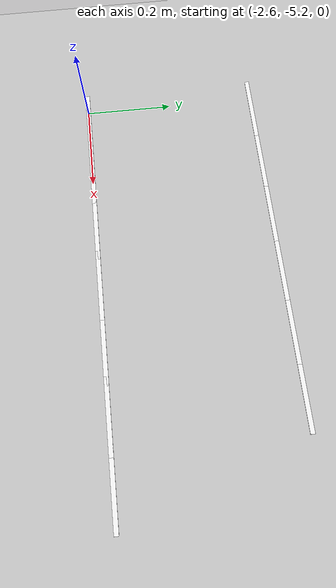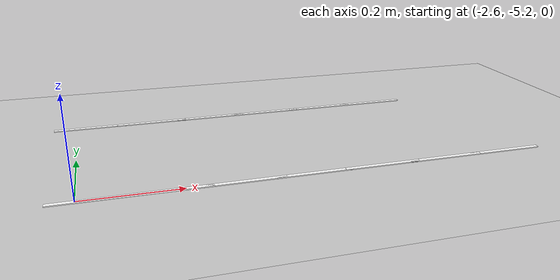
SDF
<sdf version="1.7">
 <world name="default">
  <model name="ground_plane">
   <static>1</static>
   <link name="link">
    <collision name="collision">
     <geometry><plane><normal>0 0 1</normal><size>100 100</size></plane></geometry>
     <surface>
      <contact><collide_bitmask>65535</collide_bitmask></contact>
      <friction><ode><mu>100</mu><mu2>50</mu2></ode></friction>
     </surface>
    </collision>
    <visual name="visual">
     <cast_shadows>0</cast_shadows>
     <geometry><plane><normal>0 0 1</normal><size>100 100</size></plane></geometry>
     <material>
      <script><uri>file://media/materials/scripts/gazebo.material</uri><name>Gazebo/Grey</name></script>
     </material>
    </visual>
   </link>
  </model>
  <model name="lane_line_left_6">
   <static>1</static>
   <link name="link">
    <pose>0 0 -0.004 0 -0 0</pose>
    <visual name="visual">
     <geometry><box><size>0.1629 0.01 0.01</size></box></geometry>
     <material><ambient>1 1 1 1</ambient><diffuse>1 1 1 1</diffuse></material>
    </visual>
    <collision name="collision"><geometry><box><size>0.1629 0.01 0.01</size></box></geometry></collision>
   </link>
   <pose>-2.57143 -4.8 0 0 -0 0</pose>
  </model>
  <model name="lane_line_right_6">
   <static>1</static>
   <link name="link">
    <pose>0 0 -0.004 0 -0 0</pose>
    <visual name="visual">
     <geometry><box><size>0.1629 0.01 0.01</size></box></geometry>
     <material><ambient>1 1 1 1</ambient><diffuse>1 1 1 1</diffuse></material>
    </visual>
    <collision name="collision"><geometry><box><size>0.1629 0.01 0.01</size></box></geometry></collision>
   </link>
   <pose>-2.57143 -5.2 0 0 -0 0</pose>
  </model>
  <model name="lane_line_left_7">
   <static>1</static>
   <link name="link">
    <pose>0 0 -0.004 0 -0 0</pose>
    <visual name="visual">
     <geometry><box><size>0.1629 0.01 0.01</size></box></geometry>
     <material><ambient>1 1 1 1</ambient><diffuse>1 1 1 1</diffuse></material>
    </visual>
    <collision name="collision"><geometry><box><size>0.1629 0.01 0.01</size></box></geometry></collision>
   </link>
   <pose>-2.42857 -4.8 0 0 -0 0</pose>
  </model>
  <model name="lane_line_right_7">
   <static>1</static>
   <link name="link">
    <pose>0 0 -0.004 0 -0 0</pose>
    <visual name="visual">
     <geometry><box><size>0.1629 0.01 0.01</size></box></geometry>
     <material><ambient>1 1 1 1</ambient><diffuse>1 1 1 1</diffuse></material>
    </visual>
    <collision name="collision"><geometry><box><size>0.1629 0.01 0.01</size></box></geometry></collision>
   </link>
   <pose>-2.42857 -5.2 0 0 -0 0</pose>
  </model>
  <model name="lane_line_left_8">
   <static>1</static>
   <link name="link">
    <pose>0 0 -0.004 0 -0 0</pose>
    <visual name="visual">
     <geometry><box><size>0.1629 0.01 0.01</size></box></geometry>
     <material><ambient>1 1 1 1</ambient><diffuse>1 1 1 1</diffuse></material>
    </visual>
    <collision name="collision"><geometry><box><size>0.1629 0.01 0.01</size></box></geometry></collision>
   </link>
   <pose>-2.28571 -4.8 0 0 -0 0</pose>
  </model>
  <model name="lane_line_right_8">
   <static>1</static>
   <link name="link">
    <pose>0 0 -0.004 0 -0 0</pose>
    <visual name="visual">
     <geometry><box><size>0.1629 0.01 0.01</size></box></geometry>
     <material><ambient>1 1 1 1</ambient><diffuse>1 1 1 1</diffuse></material>
    </visual>
    <collision name="collision"><geometry><box><size>0.1629 0.01 0.01</size></box></geometry></collision>
   </link>
   <pose>-2.28571 -5.2 0 0 -0 0</pose>
  </model>
  <model name="lane_line_left_9">
   <static>1</static>
   <link name="link">
    <pose>0 0 -0.004 0 -0 0</pose>
    <visual name="visual">
     <geometry><box><size>0.1629 0.01 0.01</size></box></geometry>
     <material><ambient>1 1 1 1</ambient><diffuse>1 1 1 1</diffuse></material>
    </visual>
    <collision name="collision"><geometry><box><size>0.1629 0.01 0.01</size></box></geometry></collision>
   </link>
   <pose>-2.14286 -4.8 0 0 -0 0</pose>
  </model>
  <model name="lane_line_right_9">
   <static>1</static>
   <link name="link">
    <pose>0 0 -0.004 0 -0 0</pose>
    <visual name="visual">
     <geometry><box><size>0.1629 0.01 0.01</size></box></geometry>
     <material><ambient>1 1 1 1</ambient><diffuse>1 1 1 1</diffuse></material>
    </visual>
    <collision name="collision"><geometry><box><size>0.1629 0.01 0.01</size></box></geometry></collision>
   </link>
   <pose>-2.14286 -5.2 0 0 -0 0</pose>
  </model>
  <model name="lane_line_left_10">
   <static>1</static>
   <link name="link">
    <pose>0 0 -0.004 0 -0 0</pose>
    <visual name="visual">
     <geometry><box><size>0.1629 0.01 0.01</size></box></geometry>
     <material><ambient>1 1 1 1</ambient><diffuse>1 1 1 1</diffuse></material>
    </visual>
    <collision name="collision"><geometry><box><size>0.1629 0.01 0.01</size></box></geometry></collision>
   </link>
   <pose>-2 -4.8 0 0 -0 0</pose>
  </model>
  <model name="lane_line_right_10">
   <static>1</static>
   <link name="link">
    <pose>0 0 -0.004 0 -0 0</pose>
    <visual name="visual">
     <geometry><box><size>0.1629 0.01 0.01</size></box></geometry>
     <material><ambient>1 1 1 1</ambient><diffuse>1 1 1 1</diffuse></material>
    </visual>
    <collision name="collision"><geometry><box><size>0.1629 0.01 0.01</size></box></geometry></collision>
   </link>
   <pose>-2 -5.2 0 0 -0 0</pose>
  </model>
  <model name="lane_line_left_11">
   <static>1</static>
   <link name="link">
    <pose>0 0 -0.004 0 -0 0</pose>
    <visual name="visual">
     <geometry><box><size>0.1629 0.01 0.01</size></box></geometry>
     <material><ambient>1 1 1 1</ambient><diffuse>1 1 1 1</diffuse></material>
    </visual>
    <collision name="collision"><geometry><box><size>0.1629 0.01 0.01</size></box></geometry></collision>
   </link>
   <pose>-1.85714 -4.8 0 0 -0 0</pose>
  </model>
  <model name="lane_line_right_11">
   <static>1</static>
   <link name="link">
    <pose>0 0 -0.004 0 -0 0</pose>
    <visual name="visual">
     <geometry><box><size>0.1629 0.01 0.01</size></box></geometry>
     <material><ambient>1 1 1 1</ambient><diffuse>1 1 1 1</diffuse></material>
    </visual>
    <collision name="collision"><geometry><box><size>0.1629 0.01 0.01</size></box></geometry></collision>
   </link>
   <pose>-1.85714 -5.2 0 0 -0 0</pose>
  </model>
  <model name="lane_line_right_12">
   <static>1</static>
   <link name="link">
    <pose>0 0 -0.004 0 -0 0</pose>
    <visual name="visual">
     <geometry><box><size>0.1629 0.01 0.01</size></box></geometry>
     <material><ambient>1 1 1 1</ambient><diffuse>1 1 1 1</diffuse></material>
    </visual>
    <collision name="collision"><geometry><box><size>0.1629 0.01 0.01</size></box></geometry></collision>
   </link>
   <pose>-1.71429 -5.2 0 0 -0 0</pose>
  </model>
 </world>
</sdf>
